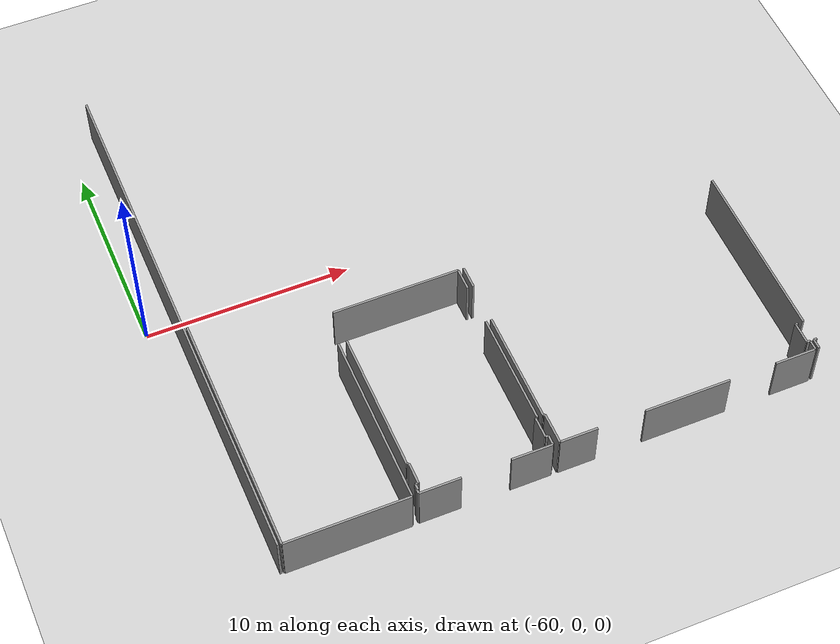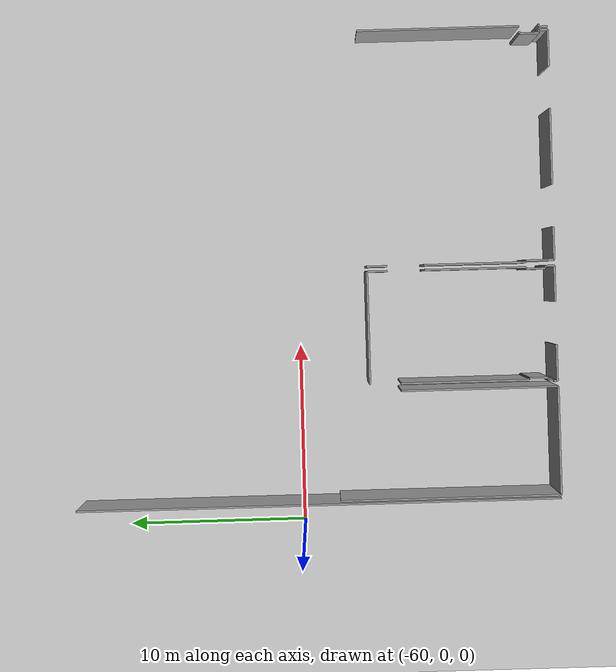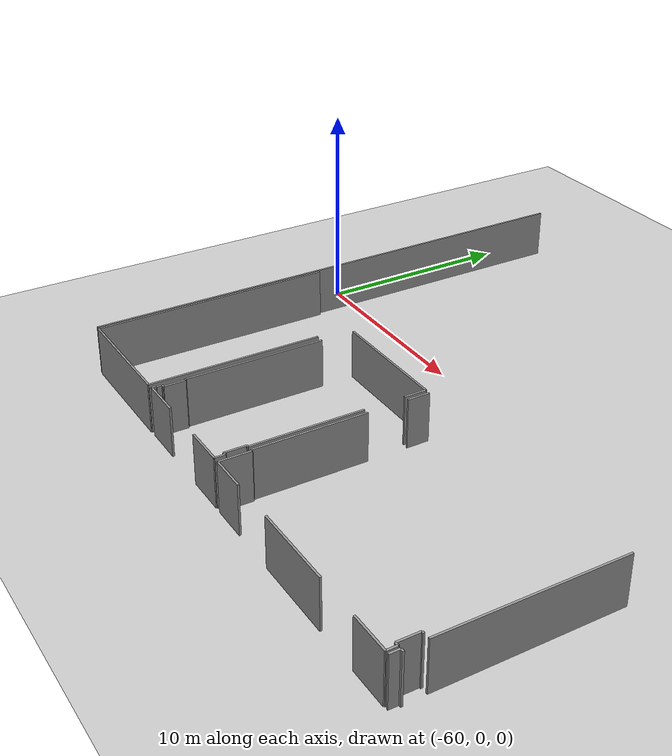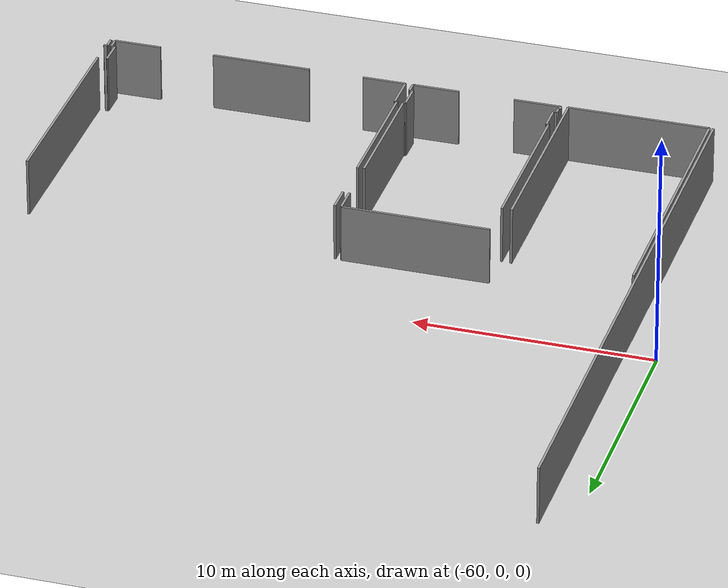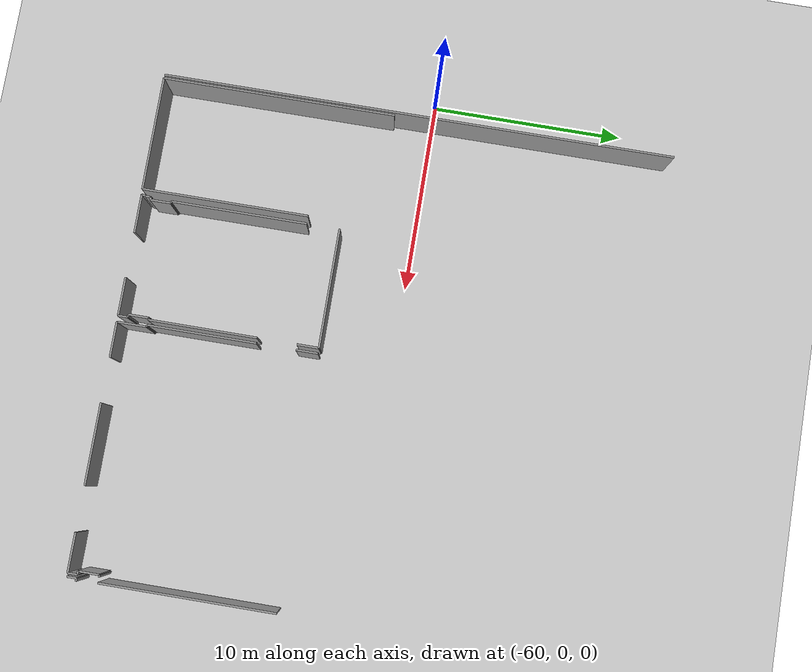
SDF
<sdf version="1.6">
 <world name="default">
  <model name="ground_plane">
   <static>1</static>
   <link name="link">
    <collision name="collision">
     <geometry><plane><normal>0 0 1</normal><size>100 100</size></plane></geometry>
     <surface><friction><ode><mu>100</mu><mu2>50</mu2></ode></friction></surface>
    </collision>
    <visual name="visual">
     <cast_shadows>0</cast_shadows>
     <geometry><plane><normal>0 0 1</normal><size>100 100</size></plane></geometry>
     <material>
      <script><uri>file://media/materials/scripts/gazebo.material</uri><name>Gazebo/Grey</name></script>
     </material>
    </visual>
   </link>
  </model>
  <model name="0510040942_A-40">
   <static>1</static>
   <link name="Wall_13">
    <collision name="Wall_13_Collision">
     <geometry><box><size>12.1495362676 0.1 2.5</size></box></geometry>
     <pose>6.07476813378 0 1.25 0 0 0</pose>
    </collision>
    <visual name="Wall_13_Visual">
     <pose>6.07476813378 0 1.25 0 0 0</pose>
     <geometry><box><size>12.1495362676 0.1 2.5</size></box></geometry>
     <material>
      <script><uri>file://media/materials/scripts/gazebo.material</uri><name>Gazebo/Grey</name></script>
      <ambient>1 1 1 1</ambient>
     </material>
    </visual>
    <pose>0.168745321441 -26.726975145 0 0 0 1.57079632679</pose>
   </link>
   <link name="Wall_21">
    <collision name="Wall_21_Collision">
     <geometry><box><size>8.64280548613 0.1 2.5</size></box></geometry>
     <pose>4.32140274306 0 1.25 0 0 0</pose>
    </collision>
    <visual name="Wall_21_Visual">
     <pose>4.32140274306 0 1.25 0 0 0</pose>
     <geometry><box><size>8.64280548613 0.1 2.5</size></box></geometry>
     <material>
      <script><uri>file://media/materials/scripts/gazebo.material</uri><name>Gazebo/Grey</name></script>
      <ambient>1 1 1 1</ambient>
     </material>
    </visual>
    <pose>6.14765850007 -18.0765570879 0 0 0 -1.57079632679</pose>
   </link>
   <link name="Wall_22">
    <collision name="Wall_22_Collision">
     <geometry><box><size>5.97891802493 0.1 2.5</size></box></geometry>
     <pose>2.98945901246 0 1.25 0 0 0</pose>
    </collision>
    <visual name="Wall_22_Visual">
     <pose>2.98945901246 0 1.25 0 0 0</pose>
     <geometry><box><size>5.97891802493 0.1 2.5</size></box></geometry>
     <material>
      <script><uri>file://media/materials/scripts/gazebo.material</uri><name>Gazebo/Grey</name></script>
      <ambient>1 1 1 1</ambient>
     </material>
    </visual>
    <pose>6.14765850007 -26.7193625741 0 0 0 -3.14031941771</pose>
   </link>
   <link name="Wall_23">
    <collision name="Wall_23_Collision">
     <geometry><box><size>7.04733750333 0.1 2.5</size></box></geometry>
     <pose>3.52366875167 0 1.25 0 0 0</pose>
    </collision>
    <visual name="Wall_23_Visual">
     <pose>3.52366875167 0 1.25 0 0 0</pose>
     <geometry><box><size>7.04733750333 0.1 2.5</size></box></geometry>
     <material>
      <script><uri>file://media/materials/scripts/gazebo.material</uri><name>Gazebo/Grey</name></script>
      <ambient>1 1 1 1</ambient>
     </material>
    </visual>
    <pose>6.55049037644 -25.1323952954 0 0 0 1.57079632679</pose>
   </link>
   <link name="Wall_24">
    <collision name="Wall_24_Collision">
     <geometry><box><size>6.21185784793 0.1 2.5</size></box></geometry>
     <pose>3.10592892396 0 1.25 0 0 0</pose>
    </collision>
    <visual name="Wall_24_Visual">
     <pose>3.10592892396 0 1.25 0 0 0</pose>
     <geometry><box><size>6.21185784793 0.1 2.5</size></box></geometry>
     <material>
      <script><uri>file://media/materials/scripts/gazebo.material</uri><name>Gazebo/Grey</name></script>
      <ambient>1 1 1 1</ambient>
     </material>
    </visual>
    <pose>6.55049037644 -16.3742593603 0 0 0 0.0</pose>
   </link>
   <link name="Wall_25">
    <collision name="Wall_25_Collision">
     <geometry><box><size>1.12031668295 0.1 2.5</size></box></geometry>
     <pose>0.560158341475 0 1.25 0 0 0</pose>
    </collision>
    <visual name="Wall_25_Visual">
     <pose>0.560158341475 0 1.25 0 0 0</pose>
     <geometry><box><size>1.12031668295 0.1 2.5</size></box></geometry>
     <material>
      <script><uri>file://media/materials/scripts/gazebo.material</uri><name>Gazebo/Grey</name></script>
      <ambient>1 1 1 1</ambient>
     </material>
    </visual>
    <pose>12.7623482244 -16.3742593603 0 0 0 -1.57079632679</pose>
   </link>
   <link name="Wall_26">
    <collision name="Wall_26_Collision">
     <geometry><box><size>5.60374030983 0.1 2.5</size></box></geometry>
     <pose>2.80187015492 0 1.25 0 0 0</pose>
    </collision>
    <visual name="Wall_26_Visual">
     <pose>2.80187015492 0 1.25 0 0 0</pose>
     <geometry><box><size>5.60374030983 0.1 2.5</size></box></geometry>
     <material>
      <script><uri>file://media/materials/scripts/gazebo.material</uri><name>Gazebo/Grey</name></script>
      <ambient>1 1 1 1</ambient>
     </material>
    </visual>
    <pose>12.7623482244 -19.5358869279 0 0 0 -1.57079632679</pose>
   </link>
   <link name="Wall_27">
    <collision name="Wall_27_Collision">
     <geometry><box><size>0.0965527741477 0.1 2.5</size></box></geometry>
     <pose>0.0482763870739 0 1.25 0 0 0</pose>
    </collision>
    <visual name="Wall_27_Visual">
     <pose>0.0482763870739 0 1.25 0 0 0</pose>
     <geometry><box><size>0.0965527741477 0.1 2.5</size></box></geometry>
     <material>
      <script><uri>file://media/materials/scripts/gazebo.material</uri><name>Gazebo/Grey</name></script>
      <ambient>1 1 1 1</ambient>
     </material>
    </visual>
    <pose>12.7623482244 -25.1396272378 0 0 0 3.14159265359</pose>
   </link>
   <link name="Wall_28">
    <collision name="Wall_28_Collision">
     <geometry><box><size>1.05903548727 0.1 2.5</size></box></geometry>
     <pose>0.529517743634 0 1.25 0 0 0</pose>
    </collision>
    <visual name="Wall_28_Visual">
     <pose>0.529517743634 0 1.25 0 0 0</pose>
     <geometry><box><size>1.05903548727 0.1 2.5</size></box></geometry>
     <material>
      <script><uri>file://media/materials/scripts/gazebo.material</uri><name>Gazebo/Grey</name></script>
      <ambient>1 1 1 1</ambient>
     </material>
    </visual>
    <pose>12.6657954502 -25.1396272378 0 0 0 -1.57079632679</pose>
   </link>
   <link name="Wall_29">
    <collision name="Wall_29_Collision">
     <geometry><box><size>0.137787533146 0.1 2.5</size></box></geometry>
     <pose>0.0688937665732 0 1.25 0 0 0</pose>
    </collision>
    <visual name="Wall_29_Visual">
     <pose>0.0688937665732 0 1.25 0 0 0</pose>
     <geometry><box><size>0.137787533146 0.1 2.5</size></box></geometry>
     <material>
      <script><uri>file://media/materials/scripts/gazebo.material</uri><name>Gazebo/Grey</name></script>
      <ambient>1 1 1 1</ambient>
     </material>
    </visual>
    <pose>12.6657954502 -26.198662725 0 0 0 0.0</pose>
   </link>
   <link name="Wall_30">
    <collision name="Wall_30_Collision">
     <geometry><box><size>0.490503317812 0.1 2.5</size></box></geometry>
     <pose>0.245251658906 0 1.25 0 0 0</pose>
    </collision>
    <visual name="Wall_30_Visual">
     <pose>0.245251658906 0 1.25 0 0 0</pose>
     <geometry><box><size>0.490503317812 0.1 2.5</size></box></geometry>
     <material>
      <script><uri>file://media/materials/scripts/gazebo.material</uri><name>Gazebo/Grey</name></script>
      <ambient>1 1 1 1</ambient>
     </material>
    </visual>
    <pose>12.8035829834 -26.198662725 0 0 0 -1.57079632679</pose>
   </link>
   <link name="Wall_31">
    <collision name="Wall_31_Collision">
     <geometry><box><size>1.99322481191 0.1 2.5</size></box></geometry>
     <pose>0.996612405953 0 1.25 0 0 0</pose>
    </collision>
    <visual name="Wall_31_Visual">
     <pose>0.996612405953 0 1.25 0 0 0</pose>
     <geometry><box><size>1.99322481191 0.1 2.5</size></box></geometry>
     <material>
      <script><uri>file://media/materials/scripts/gazebo.material</uri><name>Gazebo/Grey</name></script>
      <ambient>1 1 1 1</ambient>
     </material>
    </visual>
    <pose>12.8035829834 -26.6891660429 0 0 0 3.14159265359</pose>
   </link>
   <link name="Wall_32">
    <collision name="Wall_32_Collision">
     <geometry><box><size>1.99360544045 0.1 2.5</size></box></geometry>
     <pose>0.996802720225 0 1.25 0 0 0</pose>
    </collision>
    <visual name="Wall_32_Visual">
     <pose>0.996802720225 0 1.25 0 0 0</pose>
     <geometry><box><size>1.99360544045 0.1 2.5</size></box></geometry>
     <material>
      <script><uri>file://media/materials/scripts/gazebo.material</uri><name>Gazebo/Grey</name></script>
      <ambient>1 1 1 1</ambient>
     </material>
    </visual>
    <pose>8.45109557583 -26.6891660429 0 0 0 3.14159265359</pose>
   </link>
   <link name="Wall_33">
    <collision name="Wall_33_Collision">
     <geometry><box><size>0.197546214649 0.1 2.5</size></box></geometry>
     <pose>0.0987731073246 0 1.25 0 0 0</pose>
    </collision>
    <visual name="Wall_33_Visual">
     <pose>0.0987731073246 0 1.25 0 0 0</pose>
     <geometry><box><size>0.197546214649 0.1 2.5</size></box></geometry>
     <material>
      <script><uri>file://media/materials/scripts/gazebo.material</uri><name>Gazebo/Grey</name></script>
      <ambient>1 1 1 1</ambient>
     </material>
    </visual>
    <pose>6.45749013538 -26.6891660429 0 0 0 1.57079632679</pose>
   </link>
   <link name="Wall_34">
    <collision name="Wall_34_Collision">
     <geometry><box><size>0.0456754253524 0.1 2.5</size></box></geometry>
     <pose>0.0228377126762 0 1.25 0 0 0</pose>
    </collision>
    <visual name="Wall_34_Visual">
     <pose>0.0228377126762 0 1.25 0 0 0</pose>
     <geometry><box><size>0.0456754253524 0.1 2.5</size></box></geometry>
     <material>
      <script><uri>file://media/materials/scripts/gazebo.material</uri><name>Gazebo/Grey</name></script>
      <ambient>1 1 1 1</ambient>
     </material>
    </visual>
    <pose>6.45749013538 -26.4916198282 0 0 0 0.0</pose>
   </link>
   <link name="Wall_35">
    <collision name="Wall_35_Collision">
     <geometry><box><size>0.282045751551 0.1 2.5</size></box></geometry>
     <pose>0.141022875776 0 1.25 0 0 0</pose>
    </collision>
    <visual name="Wall_35_Visual">
     <pose>0.141022875776 0 1.25 0 0 0</pose>
     <geometry><box><size>0.282045751551 0.1 2.5</size></box></geometry>
     <material>
      <script><uri>file://media/materials/scripts/gazebo.material</uri><name>Gazebo/Grey</name></script>
      <ambient>1 1 1 1</ambient>
     </material>
    </visual>
    <pose>6.50316556073 -26.4916198282 0 0 0 1.57079632679</pose>
   </link>
   <link name="Wall_36">
    <collision name="Wall_36_Collision">
     <geometry><box><size>0.140959437685 0.1 2.5</size></box></geometry>
     <pose>0.0704797188424 0 1.25 0 0 0</pose>
    </collision>
    <visual name="Wall_36_Visual">
     <pose>0.0704797188424 0 1.25 0 0 0</pose>
     <geometry><box><size>0.140959437685 0.1 2.5</size></box></geometry>
     <material>
      <script><uri>file://media/materials/scripts/gazebo.material</uri><name>Gazebo/Grey</name></script>
      <ambient>1 1 1 1</ambient>
     </material>
    </visual>
    <pose>6.50316556073 -26.2095740767 0 0 0 0.0</pose>
   </link>
   <link name="Wall_37">
    <collision name="Wall_37_Collision">
     <geometry><box><size>1.05954299199 0.1 2.5</size></box></geometry>
     <pose>0.529771495997 0 1.25 0 0 0</pose>
    </collision>
    <visual name="Wall_37_Visual">
     <pose>0.529771495997 0 1.25 0 0 0</pose>
     <geometry><box><size>1.05954299199 0.1 2.5</size></box></geometry>
     <material>
      <script><uri>file://media/materials/scripts/gazebo.material</uri><name>Gazebo/Grey</name></script>
      <ambient>1 1 1 1</ambient>
     </material>
    </visual>
    <pose>6.64412499841 -26.2095740767 0 0 0 1.57079632679</pose>
   </link>
   <link name="Wall_38">
    <collision name="Wall_38_Collision">
     <geometry><box><size>0.0952809713101 0.1 2.5</size></box></geometry>
     <pose>0.0476404856551 0 1.25 0 0 0</pose>
    </collision>
    <visual name="Wall_38_Visual">
     <pose>0.0476404856551 0 1.25 0 0 0</pose>
     <geometry><box><size>0.0952809713101 0.1 2.5</size></box></geometry>
     <material>
      <script><uri>file://media/materials/scripts/gazebo.material</uri><name>Gazebo/Grey</name></script>
      <ambient>1 1 1 1</ambient>
     </material>
    </visual>
    <pose>6.64412499841 -25.1500310847 0 0 0 2.95542670787</pose>
   </link>
   <link name="Wall_39">
    <collision name="Wall_39_Collision">
     <geometry><box><size>5.62239110852 0.1 2.5</size></box></geometry>
     <pose>2.81119555426 0 1.25 0 0 0</pose>
    </collision>
    <visual name="Wall_39_Visual">
     <pose>2.81119555426 0 1.25 0 0 0</pose>
     <geometry><box><size>5.62239110852 0.1 2.5</size></box></geometry>
     <material>
      <script><uri>file://media/materials/scripts/gazebo.material</uri><name>Gazebo/Grey</name></script>
      <ambient>1 1 1 1</ambient>
     </material>
    </visual>
    <pose>13.0357663956 -25.1468591801 0 0 0 1.57079632679</pose>
   </link>
   <link name="Wall_40">
    <collision name="Wall_40_Collision">
     <geometry><box><size>1.13046677747 0.1 2.5</size></box></geometry>
     <pose>0.565233388736 0 1.25 0 0 0</pose>
    </collision>
    <visual name="Wall_40_Visual">
     <pose>0.565233388736 0 1.25 0 0 0</pose>
     <geometry><box><size>1.13046677747 0.1 2.5</size></box></geometry>
     <material>
      <script><uri>file://media/materials/scripts/gazebo.material</uri><name>Gazebo/Grey</name></script>
      <ambient>1 1 1 1</ambient>
     </material>
    </visual>
    <pose>13.0357663956 -17.4997779667 0 0 0 1.57079632679</pose>
   </link>
   <link name="Wall_44">
    <collision name="Wall_44_Collision">
     <geometry><box><size>0.112158544476 0.1 2.5</size></box></geometry>
     <pose>0.0560792722382 0 1.25 0 0 0</pose>
    </collision>
    <visual name="Wall_44_Visual">
     <pose>0.0560792722382 0 1.25 0 0 0</pose>
     <geometry><box><size>0.112158544476 0.1 2.5</size></box></geometry>
     <material>
      <script><uri>file://media/materials/scripts/gazebo.material</uri><name>Gazebo/Grey</name></script>
      <ambient>1 1 1 1</ambient>
     </material>
    </visual>
    <pose>25.7422891001 -25.1304921527 0 0 0 3.14159265359</pose>
   </link>
   <link name="Wall_45">
    <collision name="Wall_45_Collision">
     <geometry><box><size>1.06791681998 0.1 2.5</size></box></geometry>
     <pose>0.533958409988 0 1.25 0 0 0</pose>
    </collision>
    <visual name="Wall_45_Visual">
     <pose>0.533958409988 0 1.25 0 0 0</pose>
     <geometry><box><size>1.06791681998 0.1 2.5</size></box></geometry>
     <material>
      <script><uri>file://media/materials/scripts/gazebo.material</uri><name>Gazebo/Grey</name></script>
      <ambient>1 1 1 1</ambient>
     </material>
    </visual>
    <pose>25.6301305556 -25.1304921527 0 0 0 -1.57079632679</pose>
   </link>
   <link name="Wall_46">
    <collision name="Wall_46_Collision">
     <geometry><box><size>0.166842178718 0.1 2.5</size></box></geometry>
     <pose>0.0834210893589 0 1.25 0 0 0</pose>
    </collision>
    <visual name="Wall_46_Visual">
     <pose>0.0834210893589 0 1.25 0 0 0</pose>
     <geometry><box><size>0.166842178718 0.1 2.5</size></box></geometry>
     <material>
      <script><uri>file://media/materials/scripts/gazebo.material</uri><name>Gazebo/Grey</name></script>
      <ambient>1 1 1 1</ambient>
     </material>
    </visual>
    <pose>25.6301305556 -26.1984089727 0 0 0 0.0</pose>
   </link>
   <link name="Wall_47">
    <collision name="Wall_47_Collision">
     <geometry><box><size>0.492152708172 0.1 2.5</size></box></geometry>
     <pose>0.246076354086 0 1.25 0 0 0</pose>
    </collision>
    <visual name="Wall_47_Visual">
     <pose>0.246076354086 0 1.25 0 0 0</pose>
     <geometry><box><size>0.492152708172 0.1 2.5</size></box></geometry>
     <material>
      <script><uri>file://media/materials/scripts/gazebo.material</uri><name>Gazebo/Grey</name></script>
      <ambient>1 1 1 1</ambient>
     </material>
    </visual>
    <pose>25.7969727343 -26.1984089727 0 0 0 -1.57079632679</pose>
   </link>
   <link name="Wall_48">
    <collision name="Wall_48_Collision">
     <geometry><box><size>2.01047997259 0.1 2.5</size></box></geometry>
     <pose>1.0052399863 0 1.25 0 0 0</pose>
    </collision>
    <visual name="Wall_48_Visual">
     <pose>1.0052399863 0 1.25 0 0 0</pose>
     <geometry><box><size>2.01047997259 0.1 2.5</size></box></geometry>
     <material>
      <script><uri>file://media/materials/scripts/gazebo.material</uri><name>Gazebo/Grey</name></script>
      <ambient>1 1 1 1</ambient>
     </material>
    </visual>
    <pose>25.7969727343 -26.6905616809 0 0 0 3.14159265359</pose>
   </link>
   <link name="Wall_49">
    <collision name="Wall_49_Collision">
     <geometry><box><size>4.19262341881 0.1 2.5</size></box></geometry>
     <pose>2.0963117094 0 1.25 0 0 0</pose>
    </collision>
    <visual name="Wall_49_Visual">
     <pose>2.0963117094 0 1.25 0 0 0</pose>
     <geometry><box><size>4.19262341881 0.1 2.5</size></box></geometry>
     <material>
      <script><uri>file://media/materials/scripts/gazebo.material</uri><name>Gazebo/Grey</name></script>
      <ambient>1 1 1 1</ambient>
     </material>
    </visual>
    <pose>21.4765850007 -26.6905616809 0 0 0 3.14159265359</pose>
   </link>
   <link name="Wall_50">
    <collision name="Wall_50_Collision">
     <geometry><box><size>1.83475646117 0.1 2.5</size></box></geometry>
     <pose>0.917378230585 0 1.25 0 0 0</pose>
    </collision>
    <visual name="Wall_50_Visual">
     <pose>0.917378230585 0 1.25 0 0 0</pose>
     <geometry><box><size>1.83475646117 0.1 2.5</size></box></geometry>
     <material>
      <script><uri>file://media/materials/scripts/gazebo.material</uri><name>Gazebo/Grey</name></script>
      <ambient>1 1 1 1</ambient>
     </material>
    </visual>
    <pose>14.9611124504 -26.6905616809 0 0 0 3.14159265359</pose>
   </link>
   <link name="Wall_51">
    <collision name="Wall_51_Collision">
     <geometry><box><size>1.54192623419 0.1 2.5</size></box></geometry>
     <pose>0.770963117094 0 1.25 0 0 0</pose>
    </collision>
    <visual name="Wall_51_Visual">
     <pose>0.770963117094 0 1.25 0 0 0</pose>
     <geometry><box><size>1.54192623419 0.1 2.5</size></box></geometry>
     <material>
      <script><uri>file://media/materials/scripts/gazebo.material</uri><name>Gazebo/Grey</name></script>
      <ambient>1 1 1 1</ambient>
     </material>
    </visual>
    <pose>13.1263559892 -26.6905616809 0 0 0 1.57079632679</pose>
   </link>
   <link name="Wall_52">
    <collision name="Wall_52_Collision">
     <geometry><box><size>0.09060700632 0.1 2.5</size></box></geometry>
     <pose>0.04530350316 0 1.25 0 0 0</pose>
    </collision>
    <visual name="Wall_52_Visual">
     <pose>0.04530350316 0 1.25 0 0 0</pose>
     <geometry><box><size>0.09060700632 0.1 2.5</size></box></geometry>
     <material>
      <script><uri>file://media/materials/scripts/gazebo.material</uri><name>Gazebo/Grey</name></script>
      <ambient>1 1 1 1</ambient>
     </material>
    </visual>
    <pose>13.1263559892 -25.1486354467 0 0 0 3.12198732273</pose>
   </link>
   <link name="Wall_92">
    <collision name="Wall_92_Collision">
     <geometry><box><size>8.95098773107 0.1 2.5</size></box></geometry>
     <pose>4.47549386554 0 1.25 0 0 0</pose>
    </collision>
    <visual name="Wall_92_Visual">
     <pose>4.47549386554 0 1.25 0 0 0</pose>
     <geometry><box><size>8.95098773107 0.1 2.5</size></box></geometry>
     <material>
      <script><uri>file://media/materials/scripts/gazebo.material</uri><name>Gazebo/Grey</name></script>
      <ambient>1 1 1 1</ambient>
     </material>
    </visual>
    <pose>26.0314399178 -25.1247827245 0 0 0 1.57079632679</pose>
   </link>
   <link name="Wall_103">
    <collision name="Wall_103_Collision">
     <geometry><box><size>0.491772079627 0.1 2.5</size></box></geometry>
     <pose>0.245886039814 0 1.25 0 0 0</pose>
    </collision>
    <visual name="Wall_103_Visual">
     <pose>0.245886039814 0 1.25 0 0 0</pose>
     <geometry><box><size>0.491772079627 0.1 2.5</size></box></geometry>
     <material>
      <script><uri>file://media/materials/scripts/gazebo.material</uri><name>Gazebo/Grey</name></script>
      <ambient>1 1 1 1</ambient>
     </material>
    </visual>
    <pose>25.9730768743 -26.6955098519 0 0 0 1.57079632679</pose>
   </link>
   <link name="Wall_104">
    <collision name="Wall_104_Collision">
     <geometry><box><size>0.153520179657 0.1 2.5</size></box></geometry>
     <pose>0.0767600898283 0 1.25 0 0 0</pose>
    </collision>
    <visual name="Wall_104_Visual">
     <pose>0.0767600898283 0 1.25 0 0 0</pose>
     <geometry><box><size>0.153520179657 0.1 2.5</size></box></geometry>
     <material>
      <script><uri>file://media/materials/scripts/gazebo.material</uri><name>Gazebo/Grey</name></script>
      <ambient>1 1 1 1</ambient>
     </material>
    </visual>
    <pose>25.9730768743 -26.2037377723 0 0 0 0.0</pose>
   </link>
   <link name="Wall_481">
    <collision name="Wall_481_Collision">
     <geometry><box><size>26.726975145 0.1 2.5</size></box></geometry>
     <pose>13.3634875725 0 1.25 0 0 0</pose>
    </collision>
    <visual name="Wall_481_Visual">
     <pose>13.3634875725 0 1.25 0 0 0</pose>
     <geometry><box><size>26.726975145 0.1 2.5</size></box></geometry>
     <material>
      <script><uri>file://media/materials/scripts/gazebo.material</uri><name>Gazebo/Grey</name></script>
      <ambient>1 1 1 1</ambient>
     </material>
    </visual>
    <pose>0.0 -26.726975145 0 0 0 1.57079632679</pose>
   </link>
   <pose>-58.65 12.576975145 0 0 0 0</pose>
  </model>
 </world>
</sdf>
